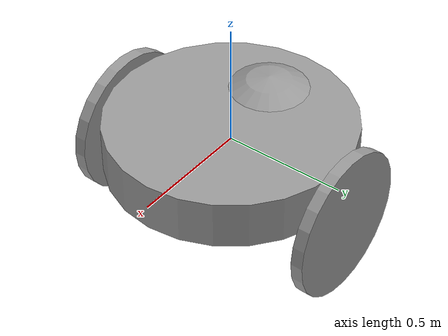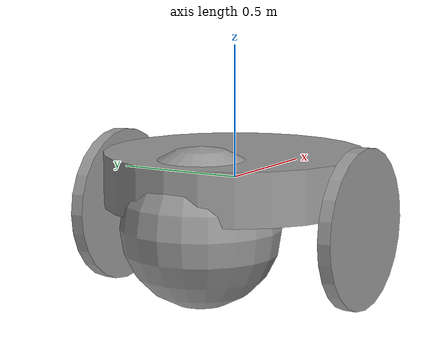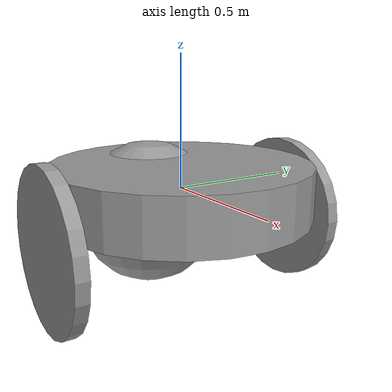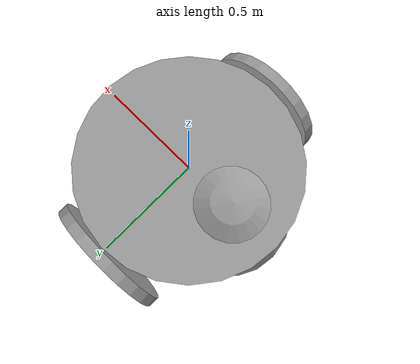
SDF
<?xml version='1.0'?>
<sdf version='1.7'>
  <model name='robot'>
    <link name='chassis'>
      <inertial>
        <mass>1</mass>
        <inertia>
          <ixx>0.145833</ixx>
          <ixy>0</ixy>
          <ixz>0</ixz>
          <iyy>0.145833</iyy>
          <iyz>0</iyz>
          <izz>0.125</izz>
        </inertia>
        <pose>0 0 0 0 -0 0</pose>
      </inertial>
      <self_collide>0</self_collide>
      <enable_wind>0</enable_wind>
      <kinematic>0</kinematic>
      <pose>0 0 0 0 -0 0</pose>
      <gravity>1</gravity>
      <visual name='visual'>
        <geometry>
          <cylinder>
            <radius>0.5</radius>
            <length>0.2</length>
          </cylinder>
        </geometry>
        <material>
          <script>
            <name>Gazebo/Grey</name>
            <uri>file://media/materials/scripts/gazebo.material</uri>
          </script>
          <shader type='pixel'>
            <normal_map>__default__</normal_map>
          </shader>
          <ambient>0.3 0.3 0.3 1</ambient>
          <diffuse>0.7 0.7 0.7 1</diffuse>
          <specular>0.01 0.01 0.01 1</specular>
          <emissive>0 0 0 1</emissive>
        </material>
        <pose>0 0 0 0 -0 0</pose>
        <transparency>0</transparency>
        <cast_shadows>1</cast_shadows>
      </visual>
      <collision name='collision'>
        <laser_retro>0</laser_retro>
        <max_contacts>10</max_contacts>
        <pose>0 0 0 0 -0 0</pose>
        <geometry>
          <cylinder>
            <radius>0.5</radius>
            <length>0.2</length>
          </cylinder>
        </geometry>
        <surface>
          <friction>
            <ode>
              <mu>1</mu>
              <mu2>1</mu2>
              <fdir1>0 0 0</fdir1>
              <slip1>0</slip1>
              <slip2>0</slip2>
            </ode>
            <torsional>
              <coefficient>1</coefficient>
              <patch_radius>0</patch_radius>
              <surface_radius>0</surface_radius>
              <use_patch_radius>1</use_patch_radius>
              <ode>
                <slip>0</slip>
              </ode>
            </torsional>
          </friction>
          <bounce>
            <restitution_coefficient>0</restitution_coefficient>
            <threshold>1e+06</threshold>
          </bounce>
          <contact>
            <collide_without_contact>0</collide_without_contact>
            <collide_without_contact_bitmask>1</collide_without_contact_bitmask>
            <collide_bitmask>1</collide_bitmask>
            <ode>
              <soft_cfm>0</soft_cfm>
              <soft_erp>0.2</soft_erp>
              <kp>1e+13</kp>
              <kd>1</kd>
              <max_vel>0.01</max_vel>
              <min_depth>0</min_depth>
            </ode>
            <bullet>
              <split_impulse>1</split_impulse>
              <split_impulse_penetration_threshold>-0.01</split_impulse_penetration_threshold>
              <soft_cfm>0</soft_cfm>
              <soft_erp>0.2</soft_erp>
              <kp>1e+13</kp>
              <kd>1</kd>
            </bullet>
          </contact>
        </surface>
      </collision>
    </link>
    <link name='caster_wheel'>
      <inertial>
        <mass>1</mass>
        <inertia>
          <ixx>0.1</ixx>
          <ixy>0</ixy>
          <ixz>0</ixz>
          <iyy>0.1</iyy>
          <iyz>0</iyz>
          <izz>0.1</izz>
        </inertia>
        <pose>0 0 0 0 -0 0</pose>
      </inertial>
      <pose>-0.249991 -0.001499 -0.15 0 -0 0</pose>
      <gravity>1</gravity>
      <self_collide>0</self_collide>
      <kinematic>0</kinematic>
      <enable_wind>0</enable_wind>
      <visual name='visual'>
        <pose>0 0 0 0 -0 0</pose>
        <geometry>
          <sphere>
            <radius>0.3</radius>
          </sphere>
        </geometry>
        <material>
          <lighting>1</lighting>
          <script>
            <uri>file://media/materials/scripts/gazebo.material</uri>
            <name>Gazebo/Grey</name>
          </script>
          <shader type='pixel'>
            <normal_map>__default__</normal_map>
          </shader>
          <ambient>0.3 0.3 0.3 1</ambient>
          <diffuse>0.7 0.7 0.7 1</diffuse>
          <specular>0.01 0.01 0.01 1</specular>
          <emissive>0 0 0 1</emissive>
        </material>
        <transparency>0</transparency>
        <cast_shadows>1</cast_shadows>
      </visual>
      <collision name='collision'>
        <laser_retro>0</laser_retro>
        <max_contacts>10</max_contacts>
        <pose>0 0 0 0 -0 0</pose>
        <geometry>
          <sphere>
            <radius>0.3</radius>
          </sphere>
        </geometry>
        <surface>
          <friction>
            <ode>
              <mu>1</mu>
              <mu2>1</mu2>
              <fdir1>0 0 0</fdir1>
              <slip1>0</slip1>
              <slip2>0</slip2>
            </ode>
            <torsional>
              <coefficient>1</coefficient>
              <patch_radius>0</patch_radius>
              <surface_radius>0</surface_radius>
              <use_patch_radius>1</use_patch_radius>
              <ode>
                <slip>0</slip>
              </ode>
            </torsional>
          </friction>
          <bounce>
            <restitution_coefficient>0</restitution_coefficient>
            <threshold>1e+06</threshold>
          </bounce>
          <contact>
            <collide_without_contact>0</collide_without_contact>
            <collide_without_contact_bitmask>1</collide_without_contact_bitmask>
            <collide_bitmask>1</collide_bitmask>
            <ode>
              <soft_cfm>0</soft_cfm>
              <soft_erp>0.2</soft_erp>
              <kp>1e+13</kp>
              <kd>1</kd>
              <max_vel>0.01</max_vel>
              <min_depth>0</min_depth>
            </ode>
            <bullet>
              <split_impulse>1</split_impulse>
              <split_impulse_penetration_threshold>-0.01</split_impulse_penetration_threshold>
              <soft_cfm>0</soft_cfm>
              <soft_erp>0.2</soft_erp>
              <kp>1e+13</kp>
              <kd>1</kd>
            </bullet>
          </contact>
        </surface>
      </collision>
    </link>
    <link name='left_wheel'>
      <inertial>
        <mass>1</mass>
        <inertia>
          <ixx>0.145833</ixx>
          <ixy>0</ixy>
          <ixz>0</ixz>
          <iyy>0.145833</iyy>
          <iyz>0</iyz>
          <izz>0.125</izz>
        </inertia>
        <pose>0 0 0 0 -0 0</pose>
      </inertial>
      <pose>-0.002846 0.524983 -0.149999 1.57 -0 0</pose>
      <gravity>1</gravity>
      <self_collide>0</self_collide>
      <kinematic>0</kinematic>
      <enable_wind>0</enable_wind>
      <visual name='visual'>
        <pose>0 -0 0 0 -0 0</pose>
        <geometry>
          <cylinder>
            <radius>0.3</radius>
            <length>0.05</length>
          </cylinder>
        </geometry>
        <material>
          <lighting>1</lighting>
          <script>
            <uri>file://media/materials/scripts/gazebo.material</uri>
            <name>Gazebo/Grey</name>
          </script>
          <shader type='pixel'>
            <normal_map>__default__</normal_map>
          </shader>
          <ambient>0.3 0.3 0.3 1</ambient>
          <diffuse>0.7 0.7 0.7 1</diffuse>
          <specular>0.01 0.01 0.01 1</specular>
          <emissive>0 0 0 1</emissive>
        </material>
        <transparency>0</transparency>
        <cast_shadows>1</cast_shadows>
      </visual>
      <collision name='collision'>
        <laser_retro>0</laser_retro>
        <max_contacts>10</max_contacts>
        <pose>0 0 0 0 -0 0</pose>
        <geometry>
          <cylinder>
            <radius>0.3</radius>
            <length>0.05</length>
          </cylinder>
        </geometry>
        <surface>
          <friction>
            <ode>
              <mu>1</mu>
              <mu2>1</mu2>
              <fdir1>0 0 0</fdir1>
              <slip1>0</slip1>
              <slip2>0</slip2>
            </ode>
            <torsional>
              <coefficient>1</coefficient>
              <patch_radius>0</patch_radius>
              <surface_radius>0</surface_radius>
              <use_patch_radius>1</use_patch_radius>
              <ode>
                <slip>0</slip>
              </ode>
            </torsional>
          </friction>
          <bounce>
            <restitution_coefficient>0</restitution_coefficient>
            <threshold>1e+06</threshold>
          </bounce>
          <contact>
            <collide_without_contact>0</collide_without_contact>
            <collide_without_contact_bitmask>1</collide_without_contact_bitmask>
            <collide_bitmask>1</collide_bitmask>
            <ode>
              <soft_cfm>0</soft_cfm>
              <soft_erp>0.2</soft_erp>
              <kp>1e+13</kp>
              <kd>1</kd>
              <max_vel>0.01</max_vel>
              <min_depth>0</min_depth>
            </ode>
            <bullet>
              <split_impulse>1</split_impulse>
              <split_impulse_penetration_threshold>-0.01</split_impulse_penetration_threshold>
              <soft_cfm>0</soft_cfm>
              <soft_erp>0.2</soft_erp>
              <kp>1e+13</kp>
              <kd>1</kd>
            </bullet>
          </contact>
        </surface>
      </collision>
    </link>
    <link name='right_wheel'>
      <inertial>
        <mass>1</mass>
        <inertia>
          <ixx>0.145833</ixx>
          <ixy>0</ixy>
          <ixz>0</ixz>
          <iyy>0.145833</iyy>
          <iyz>0</iyz>
          <izz>0.125</izz>
        </inertia>
        <pose>0 0 0 0 -0 0</pose>
      </inertial>
      <pose>0.003479 -0.524979 -0.15 1.57 -0 0</pose>
      <gravity>1</gravity>
      <self_collide>0</self_collide>
      <kinematic>0</kinematic>
      <enable_wind>0</enable_wind>
      <visual name='visual'>
        <pose>0 -0 0 0 -0 0</pose>
        <geometry>
          <cylinder>
            <radius>0.3</radius>
            <length>0.05</length>
          </cylinder>
        </geometry>
        <material>
          <lighting>1</lighting>
          <script>
            <uri>file://media/materials/scripts/gazebo.material</uri>
            <name>Gazebo/Grey</name>
          </script>
          <shader type='pixel'>
            <normal_map>__default__</normal_map>
          </shader>
          <ambient>0.3 0.3 0.3 1</ambient>
          <diffuse>0.7 0.7 0.7 1</diffuse>
          <specular>0.01 0.01 0.01 1</specular>
          <emissive>0 0 0 1</emissive>
        </material>
        <transparency>0</transparency>
        <cast_shadows>1</cast_shadows>
      </visual>
      <collision name='collision'>
        <laser_retro>0</laser_retro>
        <max_contacts>10</max_contacts>
        <pose>0 0 0 0 -0 0</pose>
        <geometry>
          <cylinder>
            <radius>0.3</radius>
            <length>0.05</length>
          </cylinder>
        </geometry>
        <surface>
          <friction>
            <ode>
              <mu>1</mu>
              <mu2>1</mu2>
              <fdir1>0 0 0</fdir1>
              <slip1>0</slip1>
              <slip2>0</slip2>
            </ode>
            <torsional>
              <coefficient>1</coefficient>
              <patch_radius>0</patch_radius>
              <surface_radius>0</surface_radius>
              <use_patch_radius>1</use_patch_radius>
              <ode>
                <slip>0</slip>
              </ode>
            </torsional>
          </friction>
          <bounce>
            <restitution_coefficient>0</restitution_coefficient>
            <threshold>1e+06</threshold>
          </bounce>
          <contact>
            <collide_without_contact>0</collide_without_contact>
            <collide_without_contact_bitmask>1</collide_without_contact_bitmask>
            <collide_bitmask>1</collide_bitmask>
            <ode>
              <soft_cfm>0</soft_cfm>
              <soft_erp>0.2</soft_erp>
              <kp>1e+13</kp>
              <kd>1</kd>
              <max_vel>0.01</max_vel>
              <min_depth>0</min_depth>
            </ode>
            <bullet>
              <split_impulse>1</split_impulse>
              <split_impulse_penetration_threshold>-0.01</split_impulse_penetration_threshold>
              <soft_cfm>0</soft_cfm>
              <soft_erp>0.2</soft_erp>
              <kp>1e+13</kp>
              <kd>1</kd>
            </bullet>
          </contact>
        </surface>
      </collision>
    </link>
    <joint name='caster_wheel_joint' type='ball'>
      <parent>chassis</parent>
      <child>caster_wheel</child>
      <pose>0 0 0 0 -0 0</pose>
      <physics>
        <ode>
          <limit>
            <cfm>0</cfm>
            <erp>0.2</erp>
          </limit>
          <suspension>
            <cfm>0</cfm>
            <erp>0.2</erp>
          </suspension>
        </ode>
      </physics>
    </joint>
    <joint name='left_wheel_joint' type='revolute'>
      <parent>chassis</parent>
      <child>left_wheel</child>
      <pose>0 0 0 0 -0 0</pose>
      <axis>
        <xyz expressed_in='__model__'>0 1 0</xyz>
        <limit>
          <lower>-1.79769e+308</lower>
          <upper>1.79769e+308</upper>
          <effort>-1</effort>
          <velocity>-1</velocity>
        </limit>
        <dynamics>
          <spring_reference>0</spring_reference>
          <spring_stiffness>0</spring_stiffness>
          <damping>0</damping>
          <friction>0</friction>
        </dynamics>
      </axis>
      <physics>
        <ode>
          <limit>
            <cfm>0</cfm>
            <erp>0.2</erp>
          </limit>
          <suspension>
            <cfm>0</cfm>
            <erp>0.2</erp>
          </suspension>
        </ode>
      </physics>
    </joint>
    <joint name='right_wheel_joint' type='revolute'>
      <parent>chassis</parent>
      <child>right_wheel</child>
      <pose>0 0 0 0 -0 0</pose>
      <axis>
        <xyz expressed_in='__model__'>0 1 0</xyz>
        <limit>
          <lower>-1.79769e+308</lower>
          <upper>1.79769e+308</upper>
          <effort>-1</effort>
          <velocity>-1</velocity>
        </limit>
        <dynamics>
          <spring_reference>0</spring_reference>
          <spring_stiffness>0</spring_stiffness>
          <damping>0</damping>
          <friction>0</friction>
        </dynamics>
      </axis>
      <physics>
        <ode>
          <limit>
            <cfm>0</cfm>
            <erp>0.2</erp>
          </limit>
          <suspension>
            <cfm>0</cfm>
            <erp>0.2</erp>
          </suspension>
        </ode>
      </physics>
    </joint>
    <static>0</static>
    <allow_auto_disable>1</allow_auto_disable>
    <plugin name='diff_drive' filename='libgazebo_ros_diff_drive.so'>
      <left_joint>left_wheel_joint</left_joint>
      <right_joint>right_wheel_joint</right_joint>
      <wheel_separation>1.049958</wheel_separation>
      <wheel_radius>0.3</wheel_radius>
      <wheel_diameter>0.6</wheel_diameter>
      <publish_odom>true</publish_odom>
      <publish_odom_tf>true</publish_odom_tf>
      <publish_wheel_tf>true</publish_wheel_tf>
      <robot_base_frame>chassis</robot_base_frame>
      <odometry_frame>odom</odometry_frame>
      <odom_publish_frequency>1</odom_publish_frequency>
      <topic>cmd_vel</topic>
    </plugin>
  </model>
</sdf>
